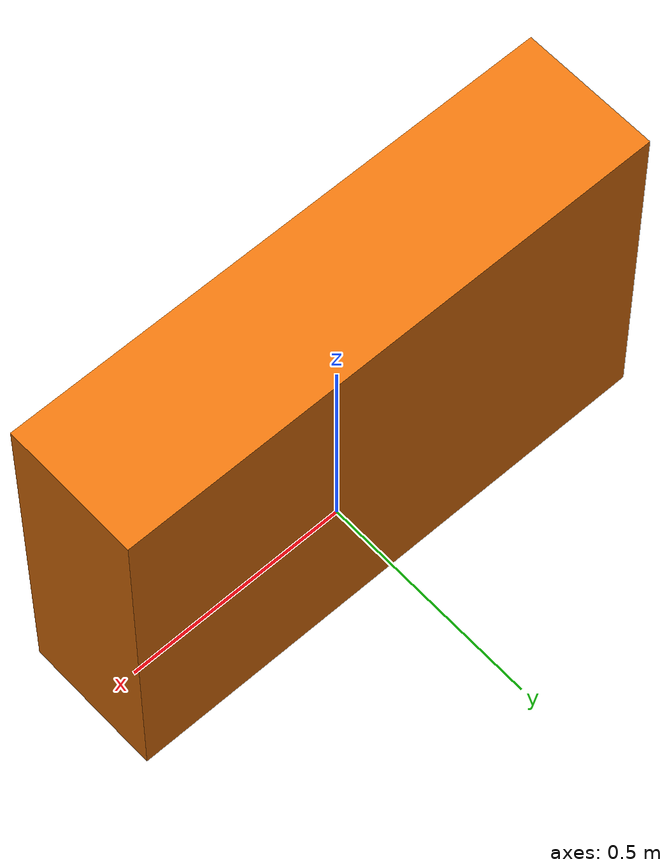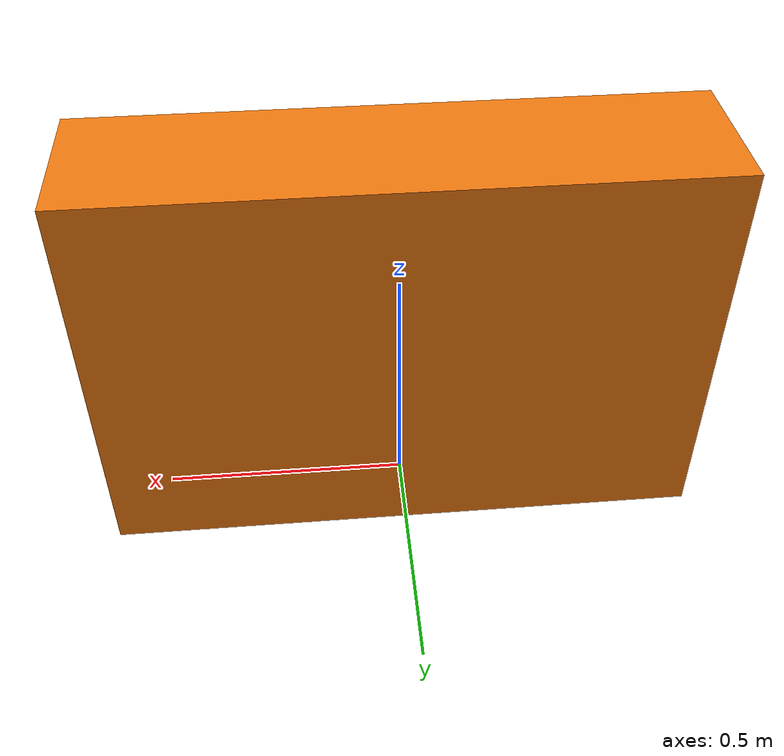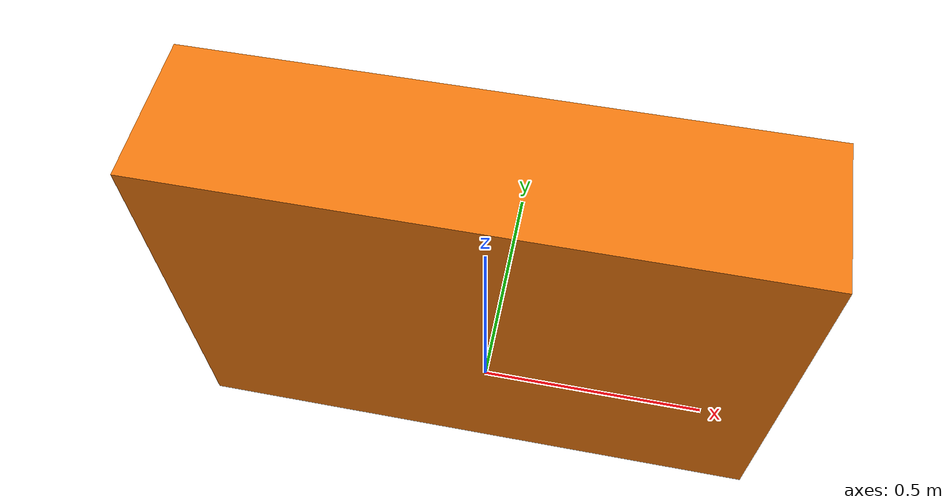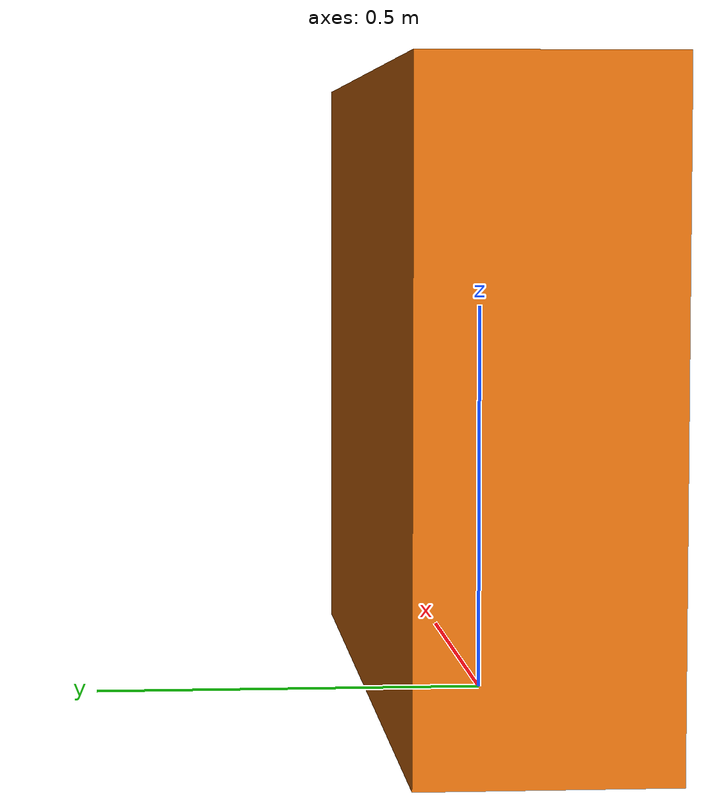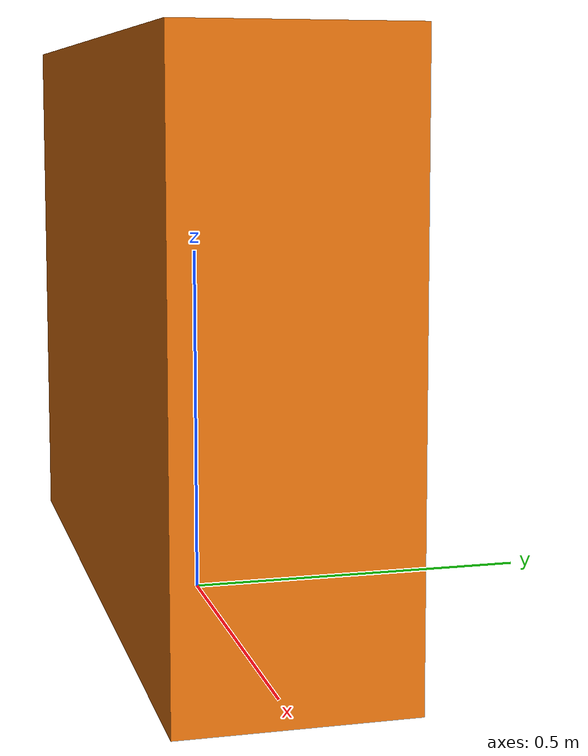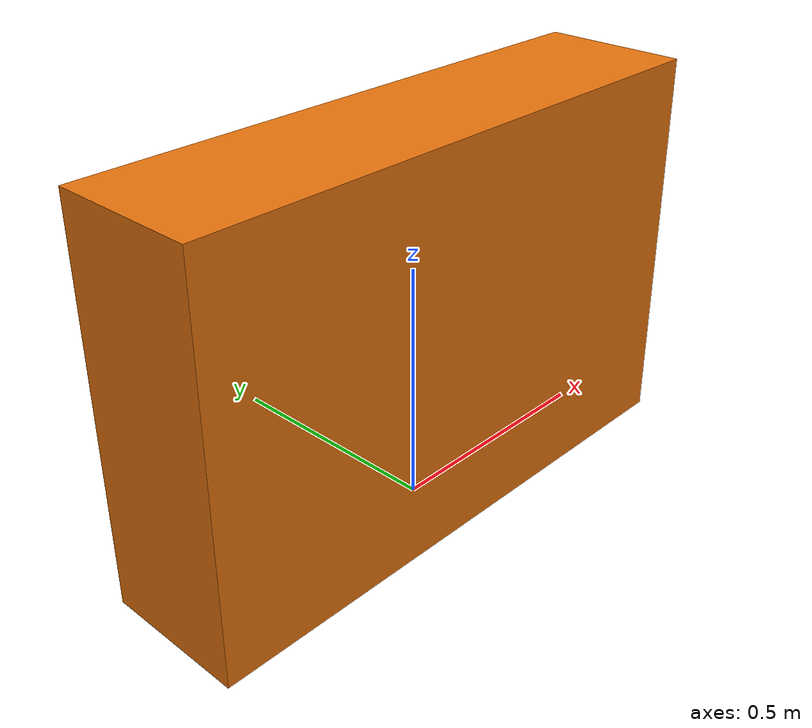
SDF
<?xml version="1.0"?>
<sdf version="1.6">
  <model name="drc_practice_orange_jersey_barrier">
    <static>true</static>
    <link name="link">
      <collision name="collision">
        <geometry>
          <box>
            <size>1.2 0.3 0.8</size>
          </box>
        </geometry>
      </collision>
      <visual name="visual">
        <pose>0 0 0.4 0 0 0</pose>
        <geometry>
          <box>
            <size>1.2 0.3 0.8</size>
          </box>
        </geometry>
        <material>
          <ambient>0.9 0.45 0.05 1</ambient>
          <diffuse>0.9 0.45 0.05 1</diffuse>
          <specular>0.1 0.1 0.1 1</specular>
        </material>
      </visual>
    </link>
  </model>
</sdf>
